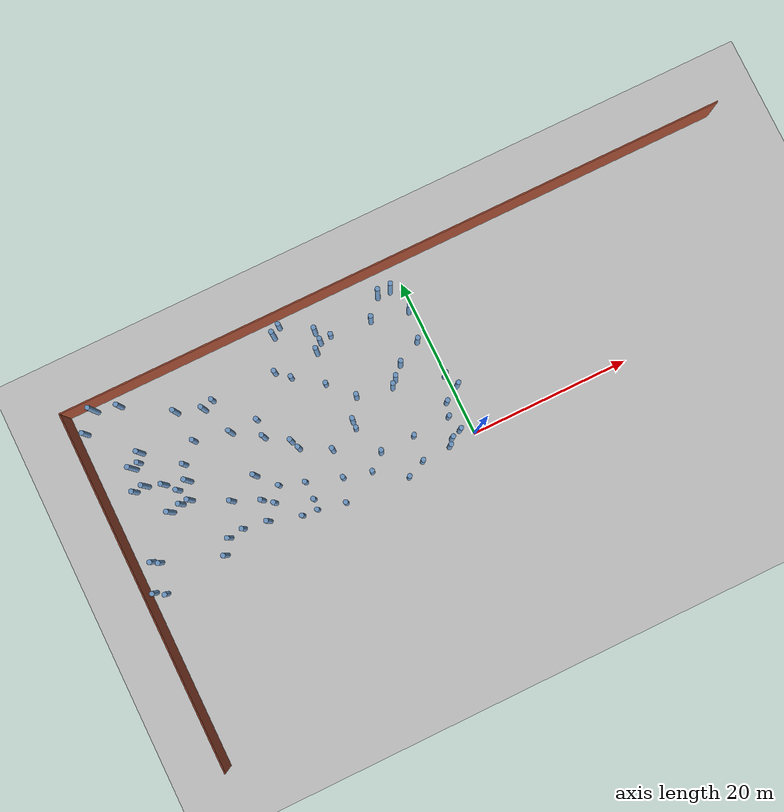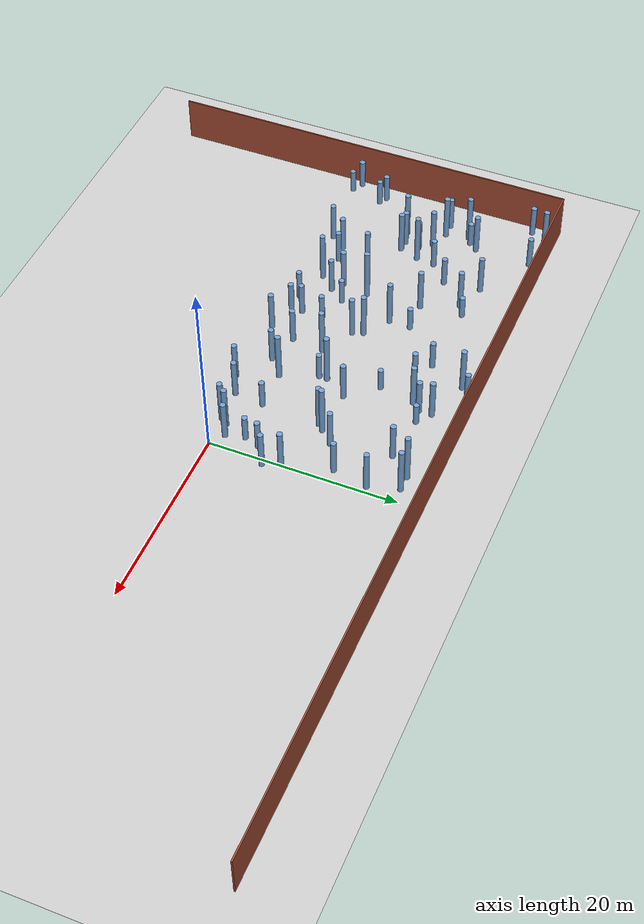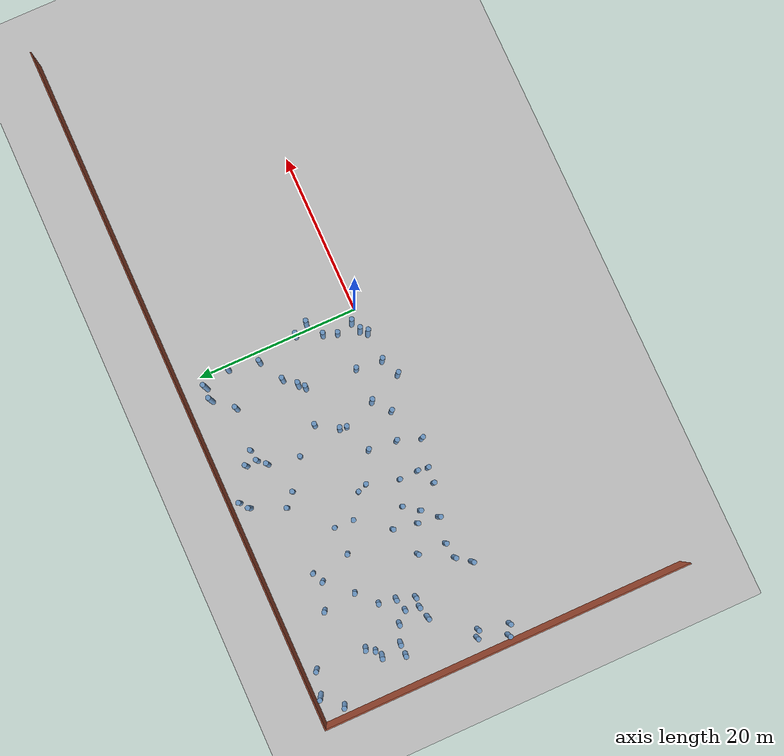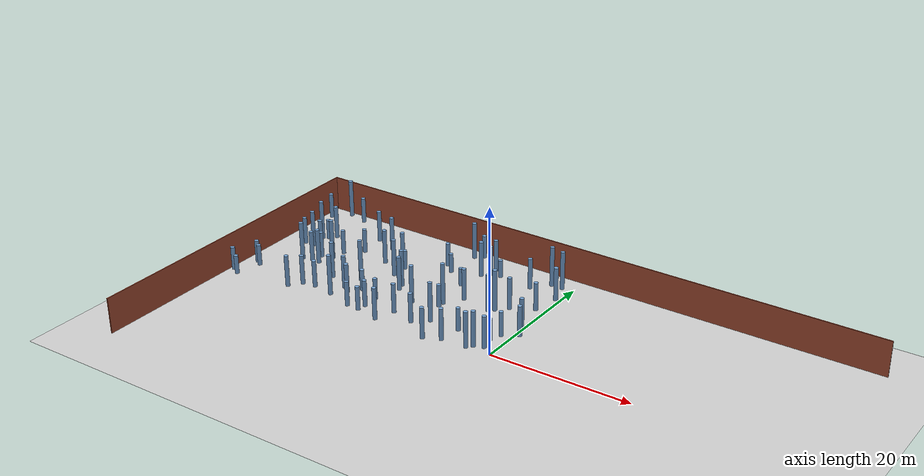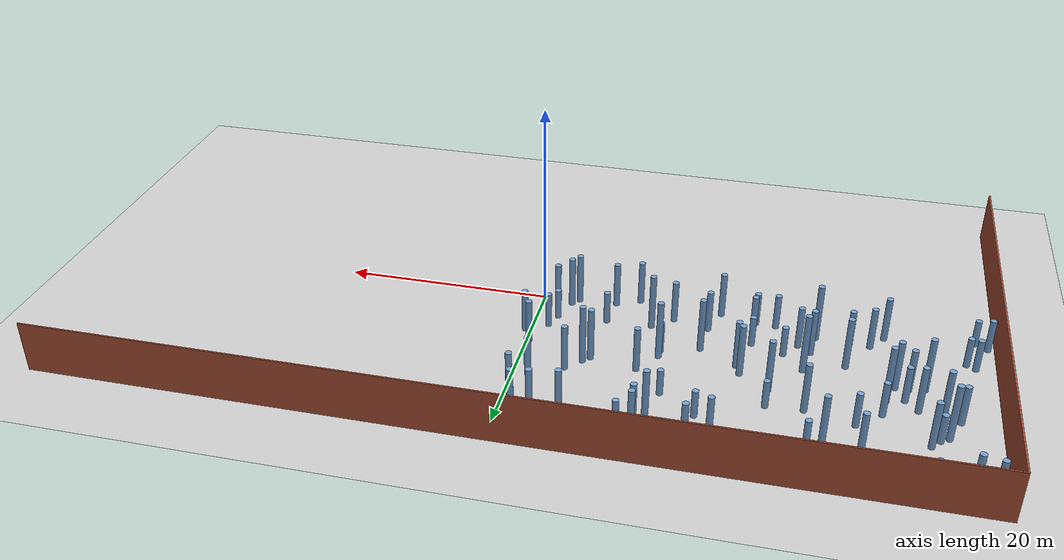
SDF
<sdf version="1.6">
 <world name="random_cylinder_world">
  <model name="ground_plane">
   <static>1</static>
   <link name="link">
    <collision name="collision">
     <geometry><plane><normal>0 0 1</normal><size>95.300000 95.300000</size></plane></geometry>
    </collision>
    <visual name="visual">
     <geometry><plane><normal>0 0 1</normal><size>95.300000 95.300000</size></plane></geometry>
     <material>
      <script><uri>file://media/materials/scripts/gazebo.material</uri><name>Gazebo/Grey</name></script>
     </material>
    </visual>
   </link>
  </model>
  <model name="wall_north">
   <static>1</static>
   <pose>0.000000 22.575000 2.500000 0 0 0</pose>
   <link name="link">
    <collision name="collision">
     <geometry><box><size>85.300000 0.150000 5.000000</size></box></geometry>
    </collision>
    <visual name="visual">
     <geometry><box><size>85.300000 0.150000 5.000000</size></box></geometry>
     <material>
      <script><uri>file://media/materials/scripts/gazebo.material</uri><name>Gazebo/Bricks</name></script>
     </material>
    </visual>
   </link>
  </model>
  <model name="wall_west">
   <static>1</static>
   <pose>-42.575000 0.000000 2.500000 0 0 0</pose>
   <link name="link">
    <collision name="collision">
     <geometry><box><size>0.150000 45.000000 5.000000</size></box></geometry>
    </collision>
    <visual name="visual">
     <geometry><box><size>0.150000 45.000000 5.000000</size></box></geometry>
     <material>
      <script><uri>file://media/materials/scripts/gazebo.material</uri><name>Gazebo/Bricks</name></script>
     </material>
    </visual>
   </link>
  </model>
  <model name="cylinder_0000">
   <static>1</static>
   <pose>-11.010741 2.701960 2.818300 0 0 0</pose>
   <link name="link">
    <collision name="collision">
     <geometry><cylinder><radius>0.300000</radius><length>5.636601</length></cylinder></geometry>
    </collision>
    <visual name="visual">
     <geometry><cylinder><radius>0.300000</radius><length>5.636601</length></cylinder></geometry>
     <material><ambient>0.447 0.624 0.812 1</ambient><diffuse>0.447 0.624 0.812 1</diffuse></material>
    </visual>
   </link>
  </model>
  <model name="cylinder_0002">
   <static>1</static>
   <pose>-16.004887 5.373331 2.728667 0 0 0</pose>
   <link name="link">
    <collision name="collision">
     <geometry><cylinder><radius>0.300000</radius><length>5.457333</length></cylinder></geometry>
    </collision>
    <visual name="visual">
     <geometry><cylinder><radius>0.300000</radius><length>5.457333</length></cylinder></geometry>
     <material><ambient>0.447 0.624 0.812 1</ambient><diffuse>0.447 0.624 0.812 1</diffuse></material>
    </visual>
   </link>
  </model>
  <model name="cylinder_0008">
   <static>1</static>
   <pose>-34.388681 9.038552 1.855433 0 0 0</pose>
   <link name="link">
    <collision name="collision">
     <geometry><cylinder><radius>0.300000</radius><length>3.710867</length></cylinder></geometry>
    </collision>
    <visual name="visual">
     <geometry><cylinder><radius>0.300000</radius><length>3.710867</length></cylinder></geometry>
     <material><ambient>0.447 0.624 0.812 1</ambient><diffuse>0.447 0.624 0.812 1</diffuse></material>
    </visual>
   </link>
  </model>
  <model name="cylinder_0009">
   <static>1</static>
   <pose>-22.623562 10.244019 2.669324 0 0 0</pose>
   <link name="link">
    <collision name="collision">
     <geometry><cylinder><radius>0.300000</radius><length>5.338647</length></cylinder></geometry>
    </collision>
    <visual name="visual">
     <geometry><cylinder><radius>0.300000</radius><length>5.338647</length></cylinder></geometry>
     <material><ambient>0.447 0.624 0.812 1</ambient><diffuse>0.447 0.624 0.812 1</diffuse></material>
    </visual>
   </link>
  </model>
  <model name="cylinder_0010">
   <static>1</static>
   <pose>-20.635406 -0.121489 1.706586 0 0 0</pose>
   <link name="link">
    <collision name="collision">
     <geometry><cylinder><radius>0.300000</radius><length>3.413172</length></cylinder></geometry>
    </collision>
    <visual name="visual">
     <geometry><cylinder><radius>0.300000</radius><length>3.413172</length></cylinder></geometry>
     <material><ambient>0.447 0.624 0.812 1</ambient><diffuse>0.447 0.624 0.812 1</diffuse></material>
    </visual>
   </link>
  </model>
  <model name="cylinder_0012">
   <static>1</static>
   <pose>-33.521990 7.334409 2.515817 0 0 0</pose>
   <link name="link">
    <collision name="collision">
     <geometry><cylinder><radius>0.300000</radius><length>5.031633</length></cylinder></geometry>
    </collision>
    <visual name="visual">
     <geometry><cylinder><radius>0.300000</radius><length>5.031633</length></cylinder></geometry>
     <material><ambient>0.447 0.624 0.812 1</ambient><diffuse>0.447 0.624 0.812 1</diffuse></material>
    </visual>
   </link>
  </model>
  <model name="cylinder_0017">
   <static>1</static>
   <pose>-19.925341 8.406065 2.643961 0 0 0</pose>
   <link name="link">
    <collision name="collision">
     <geometry><cylinder><radius>0.300000</radius><length>5.287922</length></cylinder></geometry>
    </collision>
    <visual name="visual">
     <geometry><cylinder><radius>0.300000</radius><length>5.287922</length></cylinder></geometry>
     <material><ambient>0.447 0.624 0.812 1</ambient><diffuse>0.447 0.624 0.812 1</diffuse></material>
    </visual>
   </link>
  </model>
  <model name="cylinder_0030">
   <static>1</static>
   <pose>-11.869978 19.039948 2.316620 0 0 0</pose>
   <link name="link">
    <collision name="collision">
     <geometry><cylinder><radius>0.300000</radius><length>4.633239</length></cylinder></geometry>
    </collision>
    <visual name="visual">
     <geometry><cylinder><radius>0.300000</radius><length>4.633239</length></cylinder></geometry>
     <material><ambient>0.447 0.624 0.812 1</ambient><diffuse>0.447 0.624 0.812 1</diffuse></material>
    </visual>
   </link>
  </model>
  <model name="cylinder_0035">
   <static>1</static>
   <pose>-35.518205 10.284403 2.361336 0 0 0</pose>
   <link name="link">
    <collision name="collision">
     <geometry><cylinder><radius>0.300000</radius><length>4.722673</length></cylinder></geometry>
    </collision>
    <visual name="visual">
     <geometry><cylinder><radius>0.300000</radius><length>4.722673</length></cylinder></geometry>
     <material><ambient>0.447 0.624 0.812 1</ambient><diffuse>0.447 0.624 0.812 1</diffuse></material>
    </visual>
   </link>
  </model>
  <model name="cylinder_0036">
   <static>1</static>
   <pose>-41.450790 19.775497 1.812818 0 0 0</pose>
   <link name="link">
    <collision name="collision">
     <geometry><cylinder><radius>0.300000</radius><length>3.625635</length></cylinder></geometry>
    </collision>
    <visual name="visual">
     <geometry><cylinder><radius>0.300000</radius><length>3.625635</length></cylinder></geometry>
     <material><ambient>0.447 0.624 0.812 1</ambient><diffuse>0.447 0.624 0.812 1</diffuse></material>
    </visual>
   </link>
  </model>
  <model name="cylinder_0038">
   <static>1</static>
   <pose>-37.994908 13.560230 2.834808 0 0 0</pose>
   <link name="link">
    <collision name="collision">
     <geometry><cylinder><radius>0.300000</radius><length>5.669616</length></cylinder></geometry>
    </collision>
    <visual name="visual">
     <geometry><cylinder><radius>0.300000</radius><length>5.669616</length></cylinder></geometry>
     <material><ambient>0.447 0.624 0.812 1</ambient><diffuse>0.447 0.624 0.812 1</diffuse></material>
    </visual>
   </link>
  </model>
  <model name="cylinder_0041">
   <static>1</static>
   <pose>-25.429118 6.556744 2.986411 0 0 0</pose>
   <link name="link">
    <collision name="collision">
     <geometry><cylinder><radius>0.300000</radius><length>5.972822</length></cylinder></geometry>
    </collision>
    <visual name="visual">
     <geometry><cylinder><radius>0.300000</radius><length>5.972822</length></cylinder></geometry>
     <material><ambient>0.447 0.624 0.812 1</ambient><diffuse>0.447 0.624 0.812 1</diffuse></material>
    </visual>
   </link>
  </model>
  <model name="cylinder_0050">
   <static>1</static>
   <pose>-5.287610 17.418385 2.213472 0 0 0</pose>
   <link name="link">
    <collision name="collision">
     <geometry><cylinder><radius>0.300000</radius><length>4.426944</length></cylinder></geometry>
    </collision>
    <visual name="visual">
     <geometry><cylinder><radius>0.300000</radius><length>4.426944</length></cylinder></geometry>
     <material><ambient>0.447 0.624 0.812 1</ambient><diffuse>0.447 0.624 0.812 1</diffuse></material>
    </visual>
   </link>
  </model>
  <model name="cylinder_0061">
   <static>1</static>
   <pose>-13.400455 12.908807 1.301935 0 0 0</pose>
   <link name="link">
    <collision name="collision">
     <geometry><cylinder><radius>0.300000</radius><length>2.603871</length></cylinder></geometry>
    </collision>
    <visual name="visual">
     <geometry><cylinder><radius>0.300000</radius><length>2.603871</length></cylinder></geometry>
     <material><ambient>0.447 0.624 0.812 1</ambient><diffuse>0.447 0.624 0.812 1</diffuse></material>
    </visual>
   </link>
  </model>
  <model name="cylinder_0072">
   <static>1</static>
   <pose>-40.673997 2.789898 1.630719 0 0 0</pose>
   <link name="link">
    <collision name="collision">
     <geometry><cylinder><radius>0.300000</radius><length>3.261438</length></cylinder></geometry>
    </collision>
    <visual name="visual">
     <geometry><cylinder><radius>0.300000</radius><length>3.261438</length></cylinder></geometry>
     <material><ambient>0.447 0.624 0.812 1</ambient><diffuse>0.447 0.624 0.812 1</diffuse></material>
    </visual>
   </link>
  </model>
  <model name="cylinder_0077">
   <static>1</static>
   <pose>-18.243928 16.704775 1.678150 0 0 0</pose>
   <link name="link">
    <collision name="collision">
     <geometry><cylinder><radius>0.300000</radius><length>3.356300</length></cylinder></geometry>
    </collision>
    <visual name="visual">
     <geometry><cylinder><radius>0.300000</radius><length>3.356300</length></cylinder></geometry>
     <material><ambient>0.447 0.624 0.812 1</ambient><diffuse>0.447 0.624 0.812 1</diffuse></material>
    </visual>
   </link>
  </model>
  <model name="cylinder_0086">
   <static>1</static>
   <pose>-6.698990 2.788517 1.635564 0 0 0</pose>
   <link name="link">
    <collision name="collision">
     <geometry><cylinder><radius>0.300000</radius><length>3.271127</length></cylinder></geometry>
    </collision>
    <visual name="visual">
     <geometry><cylinder><radius>0.300000</radius><length>3.271127</length></cylinder></geometry>
     <material><ambient>0.447 0.624 0.812 1</ambient><diffuse>0.447 0.624 0.812 1</diffuse></material>
    </visual>
   </link>
  </model>
  <model name="cylinder_0089">
   <static>1</static>
   <pose>-24.776858 2.754986 2.128746 0 0 0</pose>
   <link name="link">
    <collision name="collision">
     <geometry><cylinder><radius>0.300000</radius><length>4.257492</length></cylinder></geometry>
    </collision>
    <visual name="visual">
     <geometry><cylinder><radius>0.300000</radius><length>4.257492</length></cylinder></geometry>
     <material><ambient>0.447 0.624 0.812 1</ambient><diffuse>0.447 0.624 0.812 1</diffuse></material>
    </visual>
   </link>
  </model>
  <model name="cylinder_0090">
   <static>1</static>
   <pose>-6.407338 9.086114 2.661609 0 0 0</pose>
   <link name="link">
    <collision name="collision">
     <geometry><cylinder><radius>0.300000</radius><length>5.323217</length></cylinder></geometry>
    </collision>
    <visual name="visual">
     <geometry><cylinder><radius>0.300000</radius><length>5.323217</length></cylinder></geometry>
     <material><ambient>0.447 0.624 0.812 1</ambient><diffuse>0.447 0.624 0.812 1</diffuse></material>
    </visual>
   </link>
  </model>
  <model name="cylinder_0098">
   <static>1</static>
   <pose>-32.774138 9.462271 2.895056 0 0 0</pose>
   <link name="link">
    <collision name="collision">
     <geometry><cylinder><radius>0.300000</radius><length>5.790112</length></cylinder></geometry>
    </collision>
    <visual name="visual">
     <geometry><cylinder><radius>0.300000</radius><length>5.790112</length></cylinder></geometry>
     <material><ambient>0.447 0.624 0.812 1</ambient><diffuse>0.447 0.624 0.812 1</diffuse></material>
    </visual>
   </link>
  </model>
  <model name="cylinder_0110">
   <static>1</static>
   <pose>-25.958895 3.658711 2.364103 0 0 0</pose>
   <link name="link">
    <collision name="collision">
     <geometry><cylinder><radius>0.300000</radius><length>4.728206</length></cylinder></geometry>
    </collision>
    <visual name="visual">
     <geometry><cylinder><radius>0.300000</radius><length>4.728206</length></cylinder></geometry>
     <material><ambient>0.447 0.624 0.812 1</ambient><diffuse>0.447 0.624 0.812 1</diffuse></material>
    </visual>
   </link>
  </model>
  <model name="cylinder_0115">
   <static>1</static>
   <pose>-20.483771 1.163941 1.911841 0 0 0</pose>
   <link name="link">
    <collision name="collision">
     <geometry><cylinder><radius>0.300000</radius><length>3.823681</length></cylinder></geometry>
    </collision>
    <visual name="visual">
     <geometry><cylinder><radius>0.300000</radius><length>3.823681</length></cylinder></geometry>
     <material><ambient>0.447 0.624 0.812 1</ambient><diffuse>0.447 0.624 0.812 1</diffuse></material>
    </visual>
   </link>
  </model>
  <model name="cylinder_0118">
   <static>1</static>
   <pose>-16.316293 1.941146 2.101937 0 0 0</pose>
   <link name="link">
    <collision name="collision">
     <geometry><cylinder><radius>0.300000</radius><length>4.203874</length></cylinder></geometry>
    </collision>
    <visual name="visual">
     <geometry><cylinder><radius>0.300000</radius><length>4.203874</length></cylinder></geometry>
     <material><ambient>0.447 0.624 0.812 1</ambient><diffuse>0.447 0.624 0.812 1</diffuse></material>
    </visual>
   </link>
  </model>
  <model name="cylinder_0125">
   <static>1</static>
   <pose>-32.542271 -0.273563 2.266669 0 0 0</pose>
   <link name="link">
    <collision name="collision">
     <geometry><cylinder><radius>0.300000</radius><length>4.533337</length></cylinder></geometry>
    </collision>
    <visual name="visual">
     <geometry><cylinder><radius>0.300000</radius><length>4.533337</length></cylinder></geometry>
     <material><ambient>0.447 0.624 0.812 1</ambient><diffuse>0.447 0.624 0.812 1</diffuse></material>
    </visual>
   </link>
  </model>
  <model name="cylinder_0126">
   <static>1</static>
   <pose>-29.170936 5.095393 2.630671 0 0 0</pose>
   <link name="link">
    <collision name="collision">
     <geometry><cylinder><radius>0.300000</radius><length>5.261342</length></cylinder></geometry>
    </collision>
    <visual name="visual">
     <geometry><cylinder><radius>0.300000</radius><length>5.261342</length></cylinder></geometry>
     <material><ambient>0.447 0.624 0.812 1</ambient><diffuse>0.447 0.624 0.812 1</diffuse></material>
    </visual>
   </link>
  </model>
  <model name="cylinder_0127">
   <static>1</static>
   <pose>-39.045630 11.061587 1.961839 0 0 0</pose>
   <link name="link">
    <collision name="collision">
     <geometry><cylinder><radius>0.300000</radius><length>3.923677</length></cylinder></geometry>
    </collision>
    <visual name="visual">
     <geometry><cylinder><radius>0.300000</radius><length>3.923677</length></cylinder></geometry>
     <material><ambient>0.447 0.624 0.812 1</ambient><diffuse>0.447 0.624 0.812 1</diffuse></material>
    </visual>
   </link>
  </model>
  <model name="cylinder_0129">
   <static>1</static>
   <pose>-10.377438 17.914732 1.260511 0 0 0</pose>
   <link name="link">
    <collision name="collision">
     <geometry><cylinder><radius>0.300000</radius><length>2.521021</length></cylinder></geometry>
    </collision>
    <visual name="visual">
     <geometry><cylinder><radius>0.300000</radius><length>2.521021</length></cylinder></geometry>
     <material><ambient>0.447 0.624 0.812 1</ambient><diffuse>0.447 0.624 0.812 1</diffuse></material>
    </visual>
   </link>
  </model>
  <model name="cylinder_0131">
   <static>1</static>
   <pose>-26.325639 16.987643 1.309852 0 0 0</pose>
   <link name="link">
    <collision name="collision">
     <geometry><cylinder><radius>0.300000</radius><length>2.619704</length></cylinder></geometry>
    </collision>
    <visual name="visual">
     <geometry><cylinder><radius>0.300000</radius><length>2.619704</length></cylinder></geometry>
     <material><ambient>0.447 0.624 0.812 1</ambient><diffuse>0.447 0.624 0.812 1</diffuse></material>
    </visual>
   </link>
  </model>
  <model name="cylinder_0132">
   <static>1</static>
   <pose>-7.066311 -0.376879 2.271473 0 0 0</pose>
   <link name="link">
    <collision name="collision">
     <geometry><cylinder><radius>0.300000</radius><length>4.542945</length></cylinder></geometry>
    </collision>
    <visual name="visual">
     <geometry><cylinder><radius>0.300000</radius><length>4.542945</length></cylinder></geometry>
     <material><ambient>0.447 0.624 0.812 1</ambient><diffuse>0.447 0.624 0.812 1</diffuse></material>
    </visual>
   </link>
  </model>
  <model name="cylinder_0139">
   <static>1</static>
   <pose>-16.506973 20.605354 2.662355 0 0 0</pose>
   <link name="link">
    <collision name="collision">
     <geometry><cylinder><radius>0.300000</radius><length>5.324711</length></cylinder></geometry>
    </collision>
    <visual name="visual">
     <geometry><cylinder><radius>0.300000</radius><length>5.324711</length></cylinder></geometry>
     <material><ambient>0.447 0.624 0.812 1</ambient><diffuse>0.447 0.624 0.812 1</diffuse></material>
    </visual>
   </link>
  </model>
  <model name="cylinder_0148">
   <static>1</static>
   <pose>-17.258123 -0.868536 2.293727 0 0 0</pose>
   <link name="link">
    <collision name="collision">
     <geometry><cylinder><radius>0.300000</radius><length>4.587453</length></cylinder></geometry>
    </collision>
    <visual name="visual">
     <geometry><cylinder><radius>0.300000</radius><length>4.587453</length></cylinder></geometry>
     <material><ambient>0.447 0.624 0.812 1</ambient><diffuse>0.447 0.624 0.812 1</diffuse></material>
    </visual>
   </link>
  </model>
  <model name="cylinder_0149">
   <static>1</static>
   <pose>-5.774713 9.717385 2.963567 0 0 0</pose>
   <link name="link">
    <collision name="collision">
     <geometry><cylinder><radius>0.300000</radius><length>5.927134</length></cylinder></geometry>
    </collision>
    <visual name="visual">
     <geometry><cylinder><radius>0.300000</radius><length>5.927134</length></cylinder></geometry>
     <material><ambient>0.447 0.624 0.812 1</ambient><diffuse>0.447 0.624 0.812 1</diffuse></material>
    </visual>
   </link>
  </model>
  <model name="cylinder_0151">
   <static>1</static>
   <pose>-36.501961 14.934359 2.370800 0 0 0</pose>
   <link name="link">
    <collision name="collision">
     <geometry><cylinder><radius>0.300000</radius><length>4.741601</length></cylinder></geometry>
    </collision>
    <visual name="visual">
     <geometry><cylinder><radius>0.300000</radius><length>4.741601</length></cylinder></geometry>
     <material><ambient>0.447 0.624 0.812 1</ambient><diffuse>0.447 0.624 0.812 1</diffuse></material>
    </visual>
   </link>
  </model>
  <model name="cylinder_0153">
   <static>1</static>
   <pose>-31.298258 1.365730 2.125954 0 0 0</pose>
   <link name="link">
    <collision name="collision">
     <geometry><cylinder><radius>0.300000</radius><length>4.251908</length></cylinder></geometry>
    </collision>
    <visual name="visual">
     <geometry><cylinder><radius>0.300000</radius><length>4.251908</length></cylinder></geometry>
     <material><ambient>0.447 0.624 0.812 1</ambient><diffuse>0.447 0.624 0.812 1</diffuse></material>
    </visual>
   </link>
  </model>
  <model name="cylinder_0154">
   <static>1</static>
   <pose>-0.259014 7.653660 2.206112 0 0 0</pose>
   <link name="link">
    <collision name="collision">
     <geometry><cylinder><radius>0.300000</radius><length>4.412223</length></cylinder></geometry>
    </collision>
    <visual name="visual">
     <geometry><cylinder><radius>0.300000</radius><length>4.412223</length></cylinder></geometry>
     <material><ambient>0.447 0.624 0.812 1</ambient><diffuse>0.447 0.624 0.812 1</diffuse></material>
    </visual>
   </link>
  </model>
  <model name="cylinder_0158">
   <static>1</static>
   <pose>-10.780647 9.895037 2.278273 0 0 0</pose>
   <link name="link">
    <collision name="collision">
     <geometry><cylinder><radius>0.300000</radius><length>4.556545</length></cylinder></geometry>
    </collision>
    <visual name="visual">
     <geometry><cylinder><radius>0.300000</radius><length>4.556545</length></cylinder></geometry>
     <material><ambient>0.447 0.624 0.812 1</ambient><diffuse>0.447 0.624 0.812 1</diffuse></material>
    </visual>
   </link>
  </model>
  <model name="cylinder_0160">
   <static>1</static>
   <pose>0.535610 5.960686 2.181801 0 0 0</pose>
   <link name="link">
    <collision name="collision">
     <geometry><cylinder><radius>0.300000</radius><length>4.363602</length></cylinder></geometry>
    </collision>
    <visual name="visual">
     <geometry><cylinder><radius>0.300000</radius><length>4.363602</length></cylinder></geometry>
     <material><ambient>0.447 0.624 0.812 1</ambient><diffuse>0.447 0.624 0.812 1</diffuse></material>
    </visual>
   </link>
  </model>
  <model name="cylinder_0165">
   <static>1</static>
   <pose>-12.459676 6.551579 1.594460 0 0 0</pose>
   <link name="link">
    <collision name="collision">
     <geometry><cylinder><radius>0.300000</radius><length>3.188921</length></cylinder></geometry>
    </collision>
    <visual name="visual">
     <geometry><cylinder><radius>0.300000</radius><length>3.188921</length></cylinder></geometry>
     <material><ambient>0.447 0.624 0.812 1</ambient><diffuse>0.447 0.624 0.812 1</diffuse></material>
    </visual>
   </link>
  </model>
  <model name="cylinder_0166">
   <static>1</static>
   <pose>-19.497046 7.282093 2.449077 0 0 0</pose>
   <link name="link">
    <collision name="collision">
     <geometry><cylinder><radius>0.300000</radius><length>4.898154</length></cylinder></geometry>
    </collision>
    <visual name="visual">
     <geometry><cylinder><radius>0.300000</radius><length>4.898154</length></cylinder></geometry>
     <material><ambient>0.447 0.624 0.812 1</ambient><diffuse>0.447 0.624 0.812 1</diffuse></material>
    </visual>
   </link>
  </model>
  <model name="cylinder_0167">
   <static>1</static>
   <pose>-26.295918 1.110315 2.903730 0 0 0</pose>
   <link name="link">
    <collision name="collision">
     <geometry><cylinder><radius>0.300000</radius><length>5.807461</length></cylinder></geometry>
    </collision>
    <visual name="visual">
     <geometry><cylinder><radius>0.300000</radius><length>5.807461</length></cylinder></geometry>
     <material><ambient>0.447 0.624 0.812 1</ambient><diffuse>0.447 0.624 0.812 1</diffuse></material>
    </visual>
   </link>
  </model>
  <model name="cylinder_0170">
   <static>1</static>
   <pose>-9.302997 -1.373305 2.220222 0 0 0</pose>
   <link name="link">
    <collision name="collision">
     <geometry><cylinder><radius>0.300000</radius><length>4.440443</length></cylinder></geometry>
    </collision>
    <visual name="visual">
     <geometry><cylinder><radius>0.300000</radius><length>4.440443</length></cylinder></geometry>
     <material><ambient>0.447 0.624 0.812 1</ambient><diffuse>0.447 0.624 0.812 1</diffuse></material>
    </visual>
   </link>
  </model>
  <model name="cylinder_0172">
   <static>1</static>
   <pose>-25.884915 12.452331 2.489659 0 0 0</pose>
   <link name="link">
    <collision name="collision">
     <geometry><cylinder><radius>0.300000</radius><length>4.979318</length></cylinder></geometry>
    </collision>
    <visual name="visual">
     <geometry><cylinder><radius>0.300000</radius><length>4.979318</length></cylinder></geometry>
     <material><ambient>0.447 0.624 0.812 1</ambient><diffuse>0.447 0.624 0.812 1</diffuse></material>
    </visual>
   </link>
  </model>
  <model name="cylinder_0179">
   <static>1</static>
   <pose>-37.537994 11.066477 2.630649 0 0 0</pose>
   <link name="link">
    <collision name="collision">
     <geometry><cylinder><radius>0.300000</radius><length>5.261298</length></cylinder></geometry>
    </collision>
    <visual name="visual">
     <geometry><cylinder><radius>0.300000</radius><length>5.261298</length></cylinder></geometry>
     <material><ambient>0.447 0.624 0.812 1</ambient><diffuse>0.447 0.624 0.812 1</diffuse></material>
    </visual>
   </link>
  </model>
  <model name="cylinder_0181">
   <static>1</static>
   <pose>-12.704121 16.711471 2.564464 0 0 0</pose>
   <link name="link">
    <collision name="collision">
     <geometry><cylinder><radius>0.300000</radius><length>5.128928</length></cylinder></geometry>
    </collision>
    <visual name="visual">
     <geometry><cylinder><radius>0.300000</radius><length>5.128928</length></cylinder></geometry>
     <material><ambient>0.447 0.624 0.812 1</ambient><diffuse>0.447 0.624 0.812 1</diffuse></material>
    </visual>
   </link>
  </model>
  <model name="cylinder_0186">
   <static>1</static>
   <pose>-20.539664 3.430552 1.525269 0 0 0</pose>
   <link name="link">
    <collision name="collision">
     <geometry><cylinder><radius>0.300000</radius><length>3.050538</length></cylinder></geometry>
    </collision>
    <visual name="visual">
     <geometry><cylinder><radius>0.300000</radius><length>3.050538</length></cylinder></geometry>
     <material><ambient>0.447 0.624 0.812 1</ambient><diffuse>0.447 0.624 0.812 1</diffuse></material>
    </visual>
   </link>
  </model>
  <model name="cylinder_0189">
   <static>1</static>
   <pose>-32.494664 11.498048 1.760930 0 0 0</pose>
   <link name="link">
    <collision name="collision">
     <geometry><cylinder><radius>0.300000</radius><length>3.521860</length></cylinder></geometry>
    </collision>
    <visual name="visual">
     <geometry><cylinder><radius>0.300000</radius><length>3.521860</length></cylinder></geometry>
     <material><ambient>0.447 0.624 0.812 1</ambient><diffuse>0.447 0.624 0.812 1</diffuse></material>
    </visual>
   </link>
  </model>
  <model name="cylinder_0195">
   <static>1</static>
   <pose>-4.418698 11.143418 2.288256 0 0 0</pose>
   <link name="link">
    <collision name="collision">
     <geometry><cylinder><radius>0.300000</radius><length>4.576512</length></cylinder></geometry>
    </collision>
    <visual name="visual">
     <geometry><cylinder><radius>0.300000</radius><length>4.576512</length></cylinder></geometry>
     <material><ambient>0.447 0.624 0.812 1</ambient><diffuse>0.447 0.624 0.812 1</diffuse></material>
    </visual>
   </link>
  </model>
  <model name="cylinder_0198">
   <static>1</static>
   <pose>-1.995387 3.063292 1.508284 0 0 0</pose>
   <link name="link">
    <collision name="collision">
     <geometry><cylinder><radius>0.300000</radius><length>3.016568</length></cylinder></geometry>
    </collision>
    <visual name="visual">
     <geometry><cylinder><radius>0.300000</radius><length>3.016568</length></cylinder></geometry>
     <material><ambient>0.447 0.624 0.812 1</ambient><diffuse>0.447 0.624 0.812 1</diffuse></material>
    </visual>
   </link>
  </model>
  <model name="cylinder_0199">
   <static>1</static>
   <pose>-36.469585 21.056546 1.875079 0 0 0</pose>
   <link name="link">
    <collision name="collision">
     <geometry><cylinder><radius>0.300000</radius><length>3.750157</length></cylinder></geometry>
    </collision>
    <visual name="visual">
     <geometry><cylinder><radius>0.300000</radius><length>3.750157</length></cylinder></geometry>
     <material><ambient>0.447 0.624 0.812 1</ambient><diffuse>0.447 0.624 0.812 1</diffuse></material>
    </visual>
   </link>
  </model>
  <model name="cylinder_0201">
   <static>1</static>
   <pose>-41.909697 -0.637455 1.660949 0 0 0</pose>
   <link name="link">
    <collision name="collision">
     <geometry><cylinder><radius>0.300000</radius><length>3.321897</length></cylinder></geometry>
    </collision>
    <visual name="visual">
     <geometry><cylinder><radius>0.300000</radius><length>3.321897</length></cylinder></geometry>
     <material><ambient>0.447 0.624 0.812 1</ambient><diffuse>0.447 0.624 0.812 1</diffuse></material>
    </visual>
   </link>
  </model>
  <model name="cylinder_0205">
   <static>1</static>
   <pose>-1.521998 1.044609 2.262431 0 0 0</pose>
   <link name="link">
    <collision name="collision">
     <geometry><cylinder><radius>0.300000</radius><length>4.524862</length></cylinder></geometry>
    </collision>
    <visual name="visual">
     <geometry><cylinder><radius>0.300000</radius><length>4.524862</length></cylinder></geometry>
     <material><ambient>0.447 0.624 0.812 1</ambient><diffuse>0.447 0.624 0.812 1</diffuse></material>
    </visual>
   </link>
  </model>
  <model name="cylinder_0207">
   <static>1</static>
   <pose>-36.137614 7.018541 2.762779 0 0 0</pose>
   <link name="link">
    <collision name="collision">
     <geometry><cylinder><radius>0.300000</radius><length>5.525557</length></cylinder></geometry>
    </collision>
    <visual name="visual">
     <geometry><cylinder><radius>0.300000</radius><length>5.525557</length></cylinder></geometry>
     <material><ambient>0.447 0.624 0.812 1</ambient><diffuse>0.447 0.624 0.812 1</diffuse></material>
    </visual>
   </link>
  </model>
  <model name="cylinder_0211">
   <static>1</static>
   <pose>-39.874584 2.297999 1.519106 0 0 0</pose>
   <link name="link">
    <collision name="collision">
     <geometry><cylinder><radius>0.300000</radius><length>3.038212</length></cylinder></geometry>
    </collision>
    <visual name="visual">
     <geometry><cylinder><radius>0.300000</radius><length>3.038212</length></cylinder></geometry>
     <material><ambient>0.447 0.624 0.812 1</ambient><diffuse>0.447 0.624 0.812 1</diffuse></material>
    </visual>
   </link>
  </model>
  <model name="cylinder_0214">
   <static>1</static>
   <pose>-40.757527 -1.318594 1.345980 0 0 0</pose>
   <link name="link">
    <collision name="collision">
     <geometry><cylinder><radius>0.300000</radius><length>2.691959</length></cylinder></geometry>
    </collision>
    <visual name="visual">
     <geometry><cylinder><radius>0.300000</radius><length>2.691959</length></cylinder></geometry>
     <material><ambient>0.447 0.624 0.812 1</ambient><diffuse>0.447 0.624 0.812 1</diffuse></material>
    </visual>
   </link>
  </model>
  <model name="cylinder_0215">
   <static>1</static>
   <pose>-3.446651 -0.189031 2.554247 0 0 0</pose>
   <link name="link">
    <collision name="collision">
     <geometry><cylinder><radius>0.300000</radius><length>5.108494</length></cylinder></geometry>
    </collision>
    <visual name="visual">
     <geometry><cylinder><radius>0.300000</radius><length>5.108494</length></cylinder></geometry>
     <material><ambient>0.447 0.624 0.812 1</ambient><diffuse>0.447 0.624 0.812 1</diffuse></material>
    </visual>
   </link>
  </model>
  <model name="cylinder_0221">
   <static>1</static>
   <pose>-37.251341 14.019756 1.444148 0 0 0</pose>
   <link name="link">
    <collision name="collision">
     <geometry><cylinder><radius>0.300000</radius><length>2.888296</length></cylinder></geometry>
    </collision>
    <visual name="visual">
     <geometry><cylinder><radius>0.300000</radius><length>2.888296</length></cylinder></geometry>
     <material><ambient>0.447 0.624 0.812 1</ambient><diffuse>0.447 0.624 0.812 1</diffuse></material>
    </visual>
   </link>
  </model>
  <model name="cylinder_0225">
   <static>1</static>
   <pose>-30.729855 17.474711 2.270807 0 0 0</pose>
   <link name="link">
    <collision name="collision">
     <geometry><cylinder><radius>0.300000</radius><length>4.541614</length></cylinder></geometry>
    </collision>
    <visual name="visual">
     <geometry><cylinder><radius>0.300000</radius><length>4.541614</length></cylinder></geometry>
     <material><ambient>0.447 0.624 0.812 1</ambient><diffuse>0.447 0.624 0.812 1</diffuse></material>
    </visual>
   </link>
  </model>
  <model name="cylinder_0230">
   <static>1</static>
   <pose>-3.282929 19.690993 2.886256 0 0 0</pose>
   <link name="link">
    <collision name="collision">
     <geometry><cylinder><radius>0.300000</radius><length>5.772512</length></cylinder></geometry>
    </collision>
    <visual name="visual">
     <geometry><cylinder><radius>0.300000</radius><length>5.772512</length></cylinder></geometry>
     <material><ambient>0.447 0.624 0.812 1</ambient><diffuse>0.447 0.624 0.812 1</diffuse></material>
    </visual>
   </link>
  </model>
  <model name="cylinder_0242">
   <static>1</static>
   <pose>-1.430507 4.697421 1.758955 0 0 0</pose>
   <link name="link">
    <collision name="collision">
     <geometry><cylinder><radius>0.300000</radius><length>3.517911</length></cylinder></geometry>
    </collision>
    <visual name="visual">
     <geometry><cylinder><radius>0.300000</radius><length>3.517911</length></cylinder></geometry>
     <material><ambient>0.447 0.624 0.812 1</ambient><diffuse>0.447 0.624 0.812 1</diffuse></material>
    </visual>
   </link>
  </model>
  <model name="cylinder_0243">
   <static>1</static>
   <pose>-2.811400 0.548768 2.546301 0 0 0</pose>
   <link name="link">
    <collision name="collision">
     <geometry><cylinder><radius>0.300000</radius><length>5.092601</length></cylinder></geometry>
    </collision>
    <visual name="visual">
     <geometry><cylinder><radius>0.300000</radius><length>5.092601</length></cylinder></geometry>
     <material><ambient>0.447 0.624 0.812 1</ambient><diffuse>0.447 0.624 0.812 1</diffuse></material>
    </visual>
   </link>
  </model>
  <model name="cylinder_0244">
   <static>1</static>
   <pose>-34.716526 7.388239 2.188172 0 0 0</pose>
   <link name="link">
    <collision name="collision">
     <geometry><cylinder><radius>0.300000</radius><length>4.376343</length></cylinder></geometry>
    </collision>
    <visual name="visual">
     <geometry><cylinder><radius>0.300000</radius><length>4.376343</length></cylinder></geometry>
     <material><ambient>0.447 0.624 0.812 1</ambient><diffuse>0.447 0.624 0.812 1</diffuse></material>
    </visual>
   </link>
  </model>
  <model name="cylinder_0245">
   <static>1</static>
   <pose>-11.807320 17.663921 2.141460 0 0 0</pose>
   <link name="link">
    <collision name="collision">
     <geometry><cylinder><radius>0.300000</radius><length>4.282921</length></cylinder></geometry>
    </collision>
    <visual name="visual">
     <geometry><cylinder><radius>0.300000</radius><length>4.282921</length></cylinder></geometry>
     <material><ambient>0.447 0.624 0.812 1</ambient><diffuse>0.447 0.624 0.812 1</diffuse></material>
    </visual>
   </link>
  </model>
  <model name="cylinder_0249">
   <static>1</static>
   <pose>-23.525940 4.447691 1.529611 0 0 0</pose>
   <link name="link">
    <collision name="collision">
     <geometry><cylinder><radius>0.300000</radius><length>3.059222</length></cylinder></geometry>
    </collision>
    <visual name="visual">
     <geometry><cylinder><radius>0.300000</radius><length>3.059222</length></cylinder></geometry>
     <material><ambient>0.447 0.624 0.812 1</ambient><diffuse>0.447 0.624 0.812 1</diffuse></material>
    </visual>
   </link>
  </model>
  <model name="cylinder_0252">
   <static>1</static>
   <pose>-39.287534 21.782502 2.745458 0 0 0</pose>
   <link name="link">
    <collision name="collision">
     <geometry><cylinder><radius>0.300000</radius><length>5.490917</length></cylinder></geometry>
    </collision>
    <visual name="visual">
     <geometry><cylinder><radius>0.300000</radius><length>5.490917</length></cylinder></geometry>
     <material><ambient>0.447 0.624 0.812 1</ambient><diffuse>0.447 0.624 0.812 1</diffuse></material>
    </visual>
   </link>
  </model>
  <model name="cylinder_0260">
   <static>1</static>
   <pose>-30.284275 13.513422 1.752843 0 0 0</pose>
   <link name="link">
    <collision name="collision">
     <geometry><cylinder><radius>0.300000</radius><length>3.505686</length></cylinder></geometry>
    </collision>
    <visual name="visual">
     <geometry><cylinder><radius>0.300000</radius><length>3.505686</length></cylinder></geometry>
     <material><ambient>0.447 0.624 0.812 1</ambient><diffuse>0.447 0.624 0.812 1</diffuse></material>
    </visual>
   </link>
  </model>
  <model name="cylinder_0263">
   <static>1</static>
   <pose>-16.762493 15.361734 1.372025 0 0 0</pose>
   <link name="link">
    <collision name="collision">
     <geometry><cylinder><radius>0.300000</radius><length>2.744049</length></cylinder></geometry>
    </collision>
    <visual name="visual">
     <geometry><cylinder><radius>0.300000</radius><length>2.744049</length></cylinder></geometry>
     <material><ambient>0.447 0.624 0.812 1</ambient><diffuse>0.447 0.624 0.812 1</diffuse></material>
    </visual>
   </link>
  </model>
  <model name="cylinder_0264">
   <static>1</static>
   <pose>-27.600031 16.323823 2.425621 0 0 0</pose>
   <link name="link">
    <collision name="collision">
     <geometry><cylinder><radius>0.300000</radius><length>4.851242</length></cylinder></geometry>
    </collision>
    <visual name="visual">
     <geometry><cylinder><radius>0.300000</radius><length>4.851242</length></cylinder></geometry>
     <material><ambient>0.447 0.624 0.812 1</ambient><diffuse>0.447 0.624 0.812 1</diffuse></material>
    </visual>
   </link>
  </model>
  <model name="cylinder_0270">
   <static>1</static>
   <pose>-29.399090 1.642175 1.945284 0 0 0</pose>
   <link name="link">
    <collision name="collision">
     <geometry><cylinder><radius>0.300000</radius><length>3.890569</length></cylinder></geometry>
    </collision>
    <visual name="visual">
     <geometry><cylinder><radius>0.300000</radius><length>3.890569</length></cylinder></geometry>
     <material><ambient>0.447 0.624 0.812 1</ambient><diffuse>0.447 0.624 0.812 1</diffuse></material>
    </visual>
   </link>
  </model>
  <model name="cylinder_0271">
   <static>1</static>
   <pose>-12.424802 7.420673 2.950548 0 0 0</pose>
   <link name="link">
    <collision name="collision">
     <geometry><cylinder><radius>0.300000</radius><length>5.901095</length></cylinder></geometry>
    </collision>
    <visual name="visual">
     <geometry><cylinder><radius>0.300000</radius><length>5.901095</length></cylinder></geometry>
     <material><ambient>0.447 0.624 0.812 1</ambient><diffuse>0.447 0.624 0.812 1</diffuse></material>
    </visual>
   </link>
  </model>
  <model name="cylinder_0272">
   <static>1</static>
   <pose>-15.452857 21.503294 1.667656 0 0 0</pose>
   <link name="link">
    <collision name="collision">
     <geometry><cylinder><radius>0.300000</radius><length>3.335313</length></cylinder></geometry>
    </collision>
    <visual name="visual">
     <geometry><cylinder><radius>0.300000</radius><length>3.335313</length></cylinder></geometry>
     <material><ambient>0.447 0.624 0.812 1</ambient><diffuse>0.447 0.624 0.812 1</diffuse></material>
    </visual>
   </link>
  </model>
  <model name="cylinder_0273">
   <static>1</static>
   <pose>-1.636614 19.681484 2.755366 0 0 0</pose>
   <link name="link">
    <collision name="collision">
     <geometry><cylinder><radius>0.300000</radius><length>5.510732</length></cylinder></geometry>
    </collision>
    <visual name="visual">
     <geometry><cylinder><radius>0.300000</radius><length>5.510732</length></cylinder></geometry>
     <material><ambient>0.447 0.624 0.812 1</ambient><diffuse>0.447 0.624 0.812 1</diffuse></material>
    </visual>
   </link>
  </model>
  <model name="cylinder_0276">
   <static>1</static>
   <pose>-22.521300 0.006549 1.768375 0 0 0</pose>
   <link name="link">
    <collision name="collision">
     <geometry><cylinder><radius>0.300000</radius><length>3.536751</length></cylinder></geometry>
    </collision>
    <visual name="visual">
     <geometry><cylinder><radius>0.300000</radius><length>3.536751</length></cylinder></geometry>
     <material><ambient>0.447 0.624 0.812 1</ambient><diffuse>0.447 0.624 0.812 1</diffuse></material>
    </visual>
   </link>
  </model>
  <model name="cylinder_0280">
   <static>1</static>
   <pose>-1.406787 12.771397 2.022396 0 0 0</pose>
   <link name="link">
    <collision name="collision">
     <geometry><cylinder><radius>0.300000</radius><length>4.044791</length></cylinder></geometry>
    </collision>
    <visual name="visual">
     <geometry><cylinder><radius>0.300000</radius><length>4.044791</length></cylinder></geometry>
     <material><ambient>0.447 0.624 0.812 1</ambient><diffuse>0.447 0.624 0.812 1</diffuse></material>
    </visual>
   </link>
  </model>
  <model name="cylinder_0284">
   <static>1</static>
   <pose>-12.944574 1.079191 2.124722 0 0 0</pose>
   <link name="link">
    <collision name="collision">
     <geometry><cylinder><radius>0.300000</radius><length>4.249444</length></cylinder></geometry>
    </collision>
    <visual name="visual">
     <geometry><cylinder><radius>0.300000</radius><length>4.249444</length></cylinder></geometry>
     <material><ambient>0.447 0.624 0.812 1</ambient><diffuse>0.447 0.624 0.812 1</diffuse></material>
    </visual>
   </link>
  </model>
  <model name="cylinder_0297">
   <static>1</static>
   <pose>-22.560182 12.584255 1.392289 0 0 0</pose>
   <link name="link">
    <collision name="collision">
     <geometry><cylinder><radius>0.300000</radius><length>2.784577</length></cylinder></geometry>
    </collision>
    <visual name="visual">
     <geometry><cylinder><radius>0.300000</radius><length>2.784577</length></cylinder></geometry>
     <material><ambient>0.447 0.624 0.812 1</ambient><diffuse>0.447 0.624 0.812 1</diffuse></material>
    </visual>
   </link>
  </model>
  <model name="cylinder_0304">
   <static>1</static>
   <pose>-0.680104 16.499784 2.405270 0 0 0</pose>
   <link name="link">
    <collision name="collision">
     <geometry><cylinder><radius>0.300000</radius><length>4.810541</length></cylinder></geometry>
    </collision>
    <visual name="visual">
     <geometry><cylinder><radius>0.300000</radius><length>4.810541</length></cylinder></geometry>
     <material><ambient>0.447 0.624 0.812 1</ambient><diffuse>0.447 0.624 0.812 1</diffuse></material>
    </visual>
   </link>
  </model>
 </world>
</sdf>
